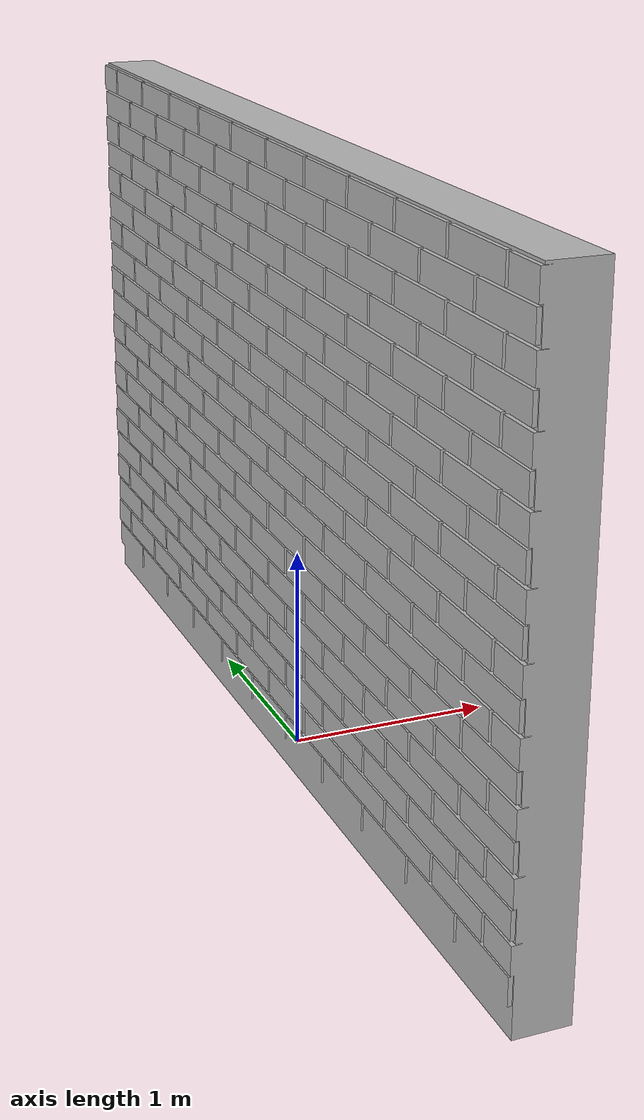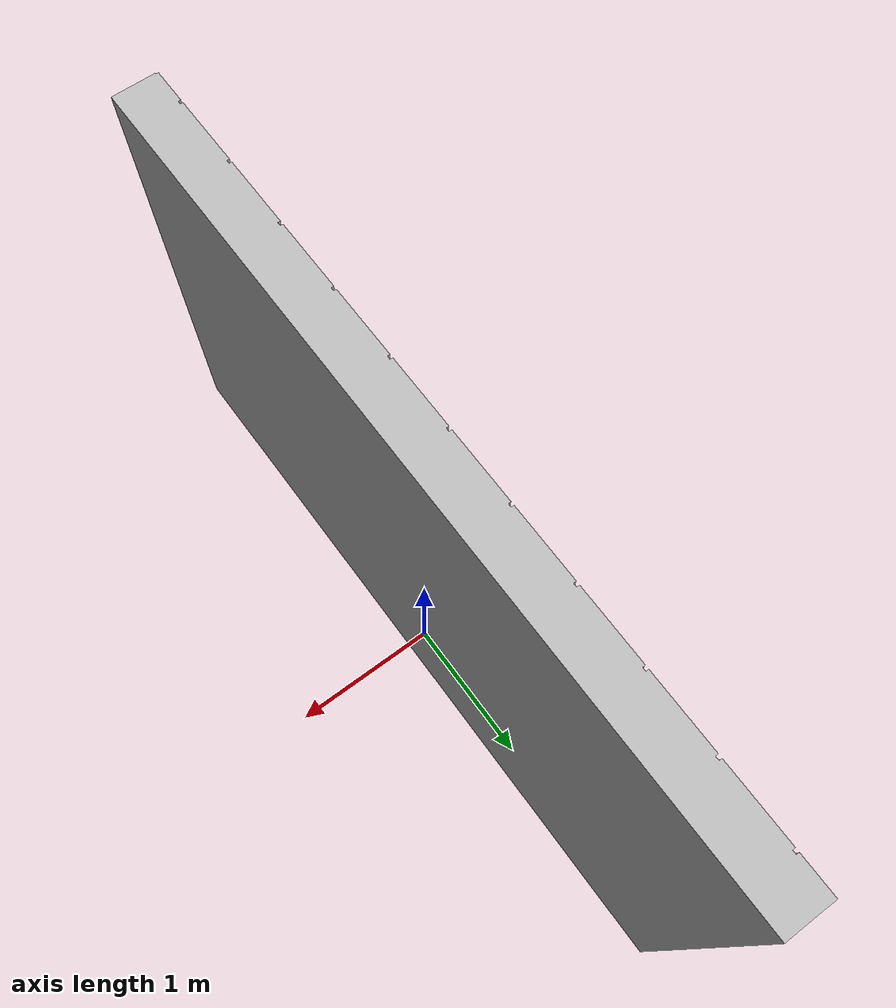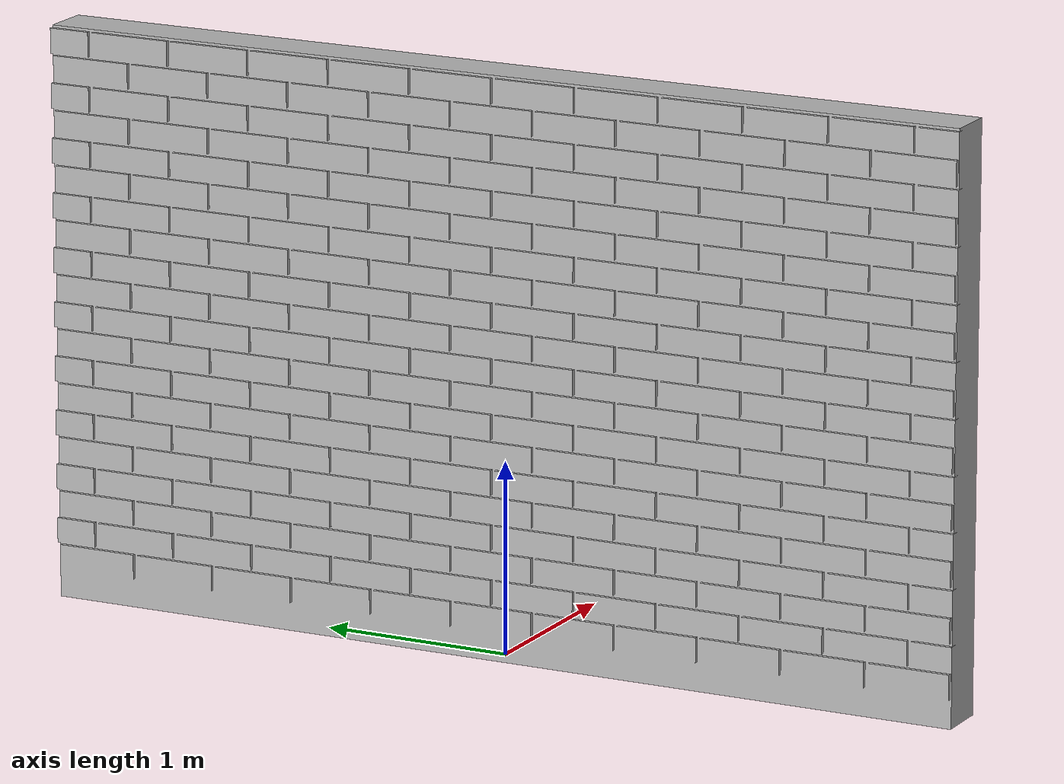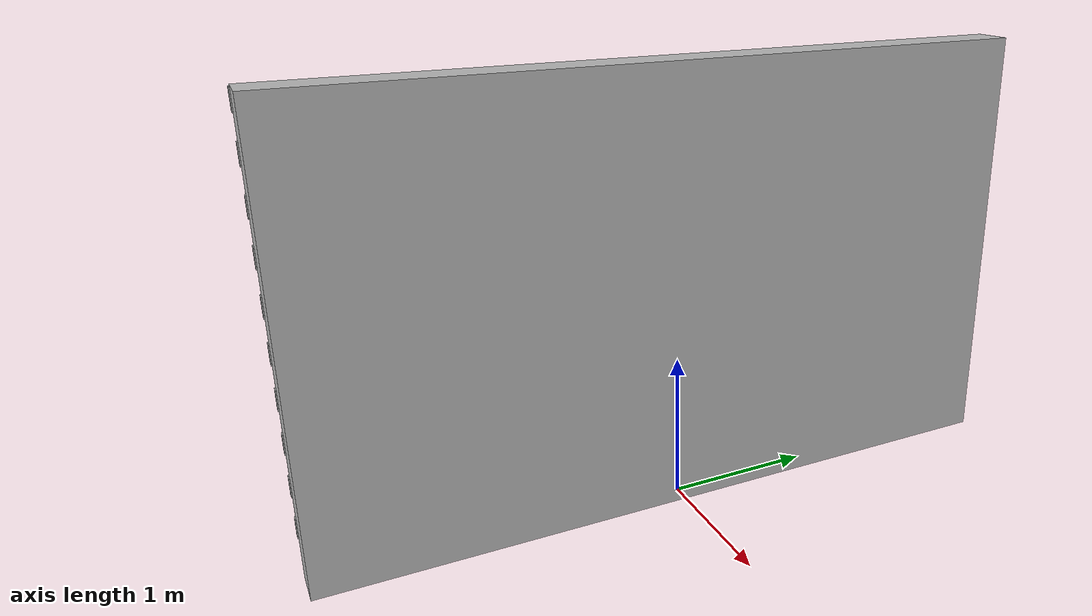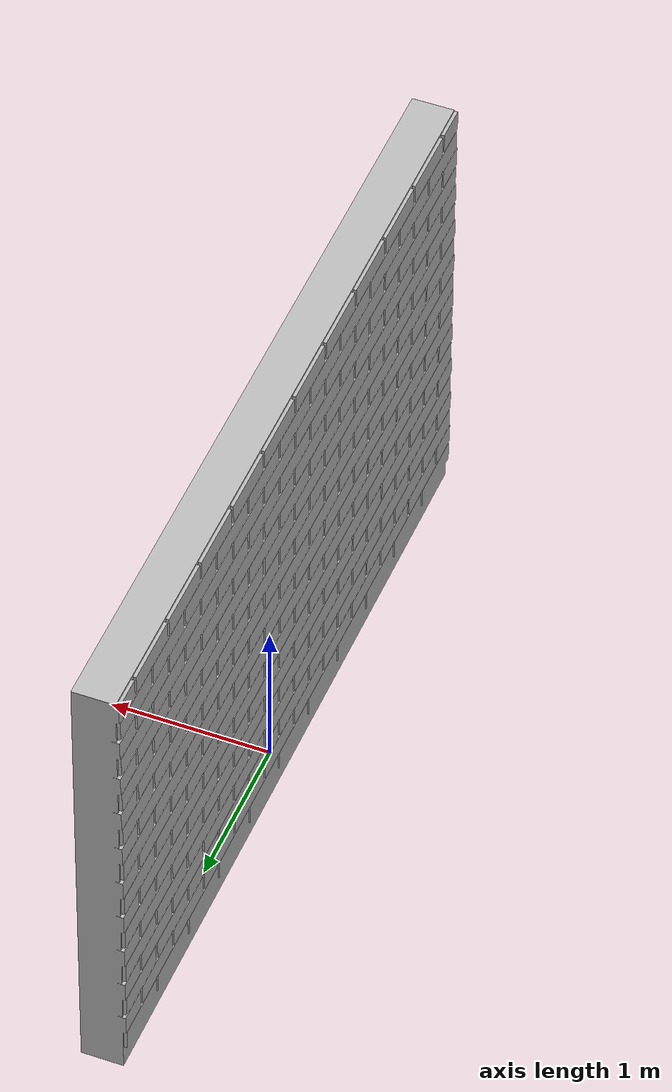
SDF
<sdf version="1.5">
  <model name="Robot">
    <link name="Robot">
      <visual name="visual_Wall">
        <pose>0.0 0.0 0. 0.0 0.0 -1.57</pose>
        <geometry>
          <mesh>
            <uri>package://underactuated/models/uav_environment/wall.obj</uri>
          </mesh>
        </geometry>
      </visual>
      <collision name="collision_Wall">
        <pose>0.0 0.0 1.5 0.0 0.0 0.0</pose>
        <geometry>
          <box>
            <size>0.25 5.0 3.0</size>
          </box>
        </geometry>
      </collision>
    </link>
  </model>
</sdf>
